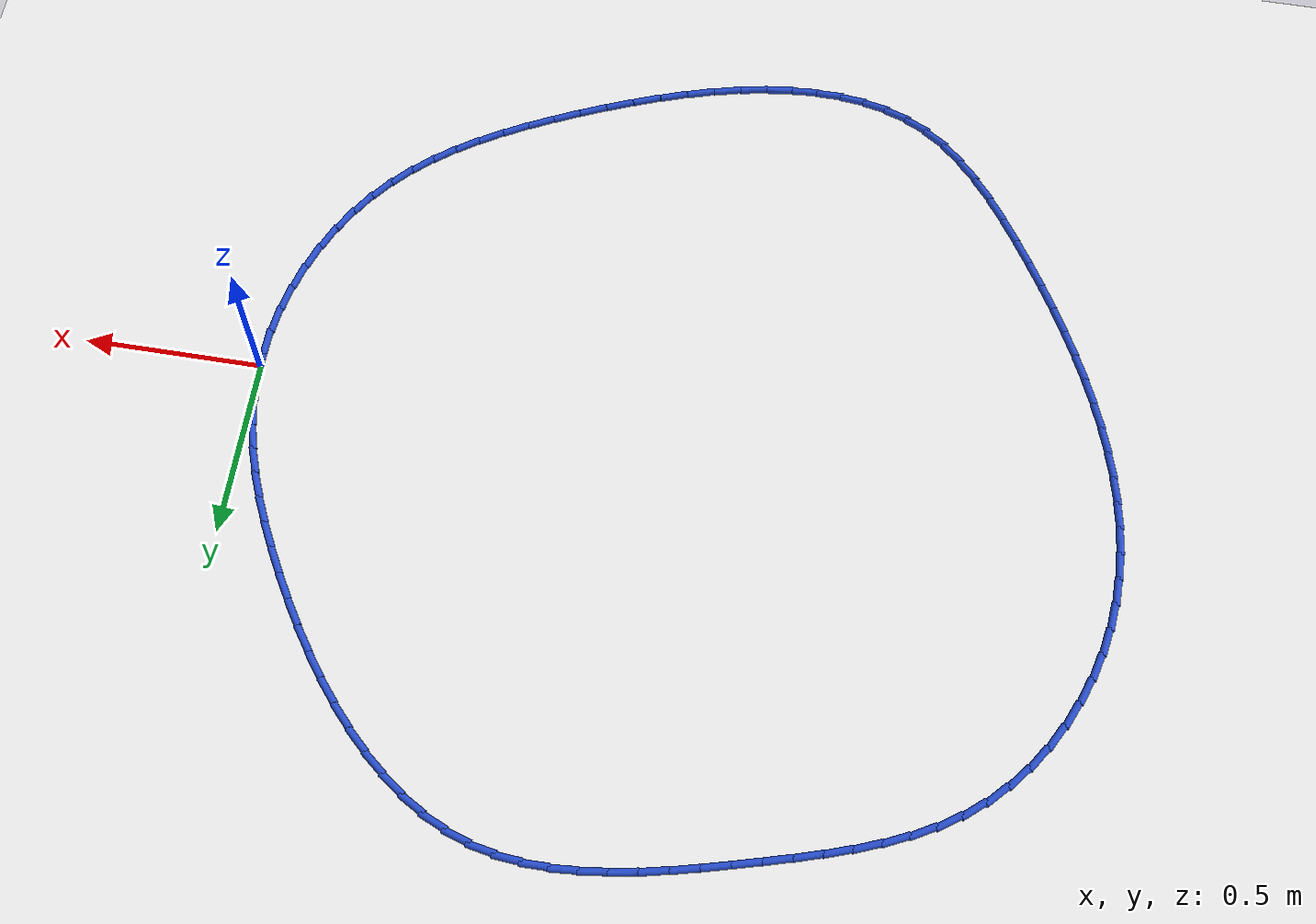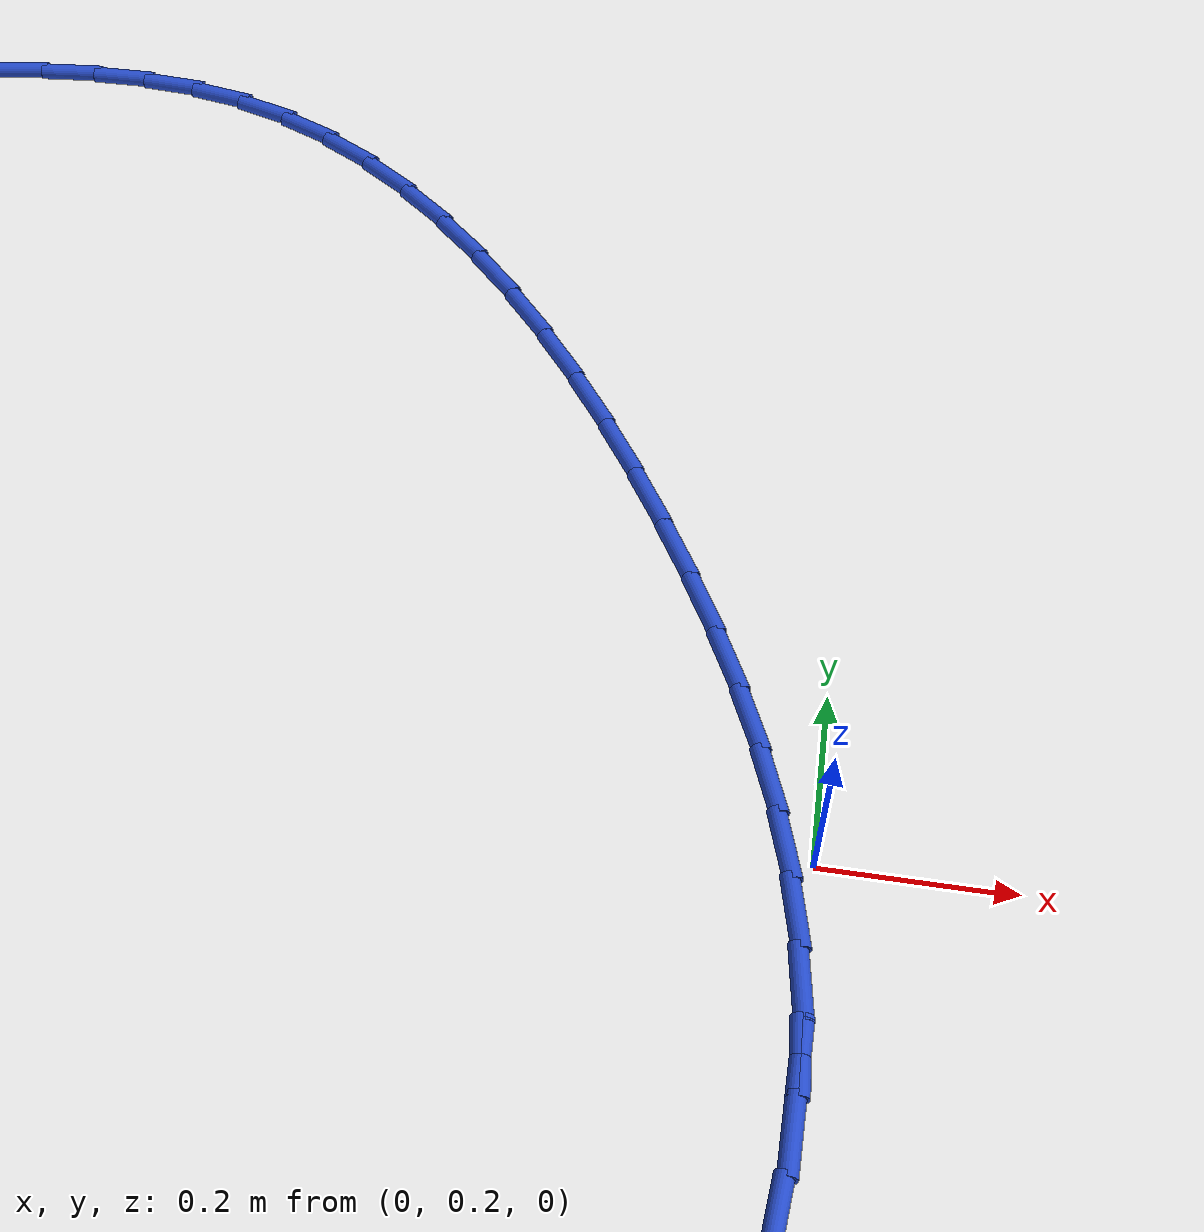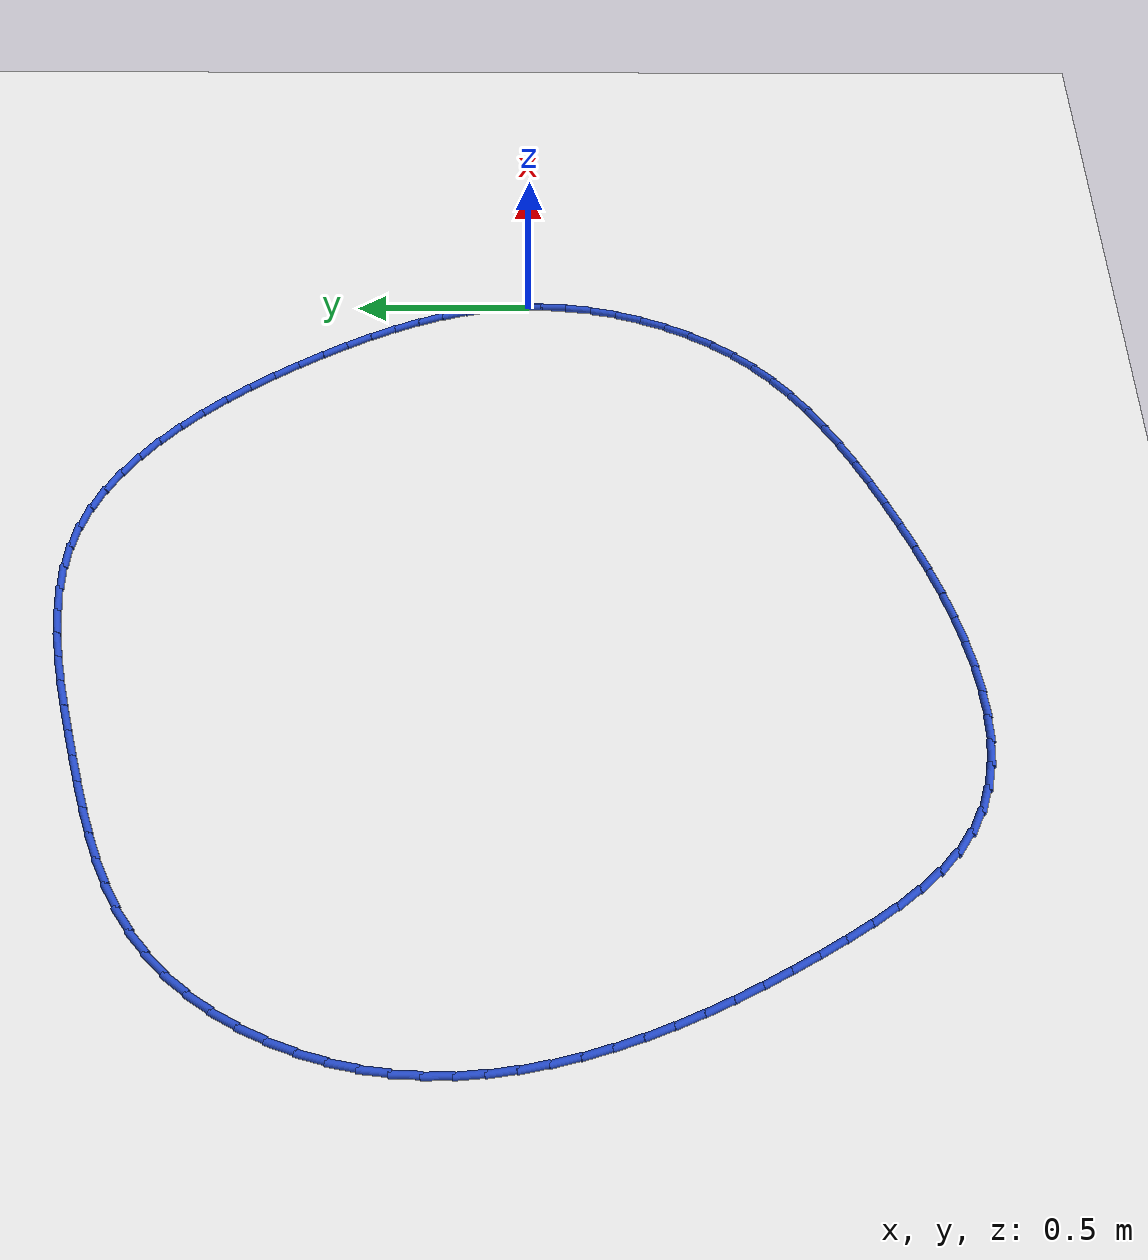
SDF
<sdf version="1.6">
 <world name="default">
  <light name="sun" type="directional">
   <pose>0 0 10 0 -0 0</pose>
   <diffuse>0.8 0.8 0.8 1</diffuse>
   <specular>0.2 0.2 0.2 1</specular>
   <attenuation>
    <range>1000</range>
    <constant>0.9</constant>
    <linear>0.01</linear>
    <quadratic>0.001</quadratic>
   </attenuation>
   <direction>-0.5 0.1 -0.9</direction>
  </light>
  <model name="ground_plane">
   <static>1</static>
   <link name="link">
    <collision name="collision">
     <geometry><plane><normal>0 0 1</normal><size>100 100</size></plane></geometry>
     <surface><friction><ode><mu>100</mu><mu2>50</mu2></ode></friction></surface>
    </collision>
    <visual name="visual">
     <cast_shadows>0</cast_shadows>
     <geometry><plane><normal>0 0 1</normal><size>100 100</size></plane></geometry>
     <material>
      <script><uri>file://media/materials/scripts/gazebo.material</uri><name>Gazebo/WhiteGlow</name></script>
     </material>
    </visual>
   </link>
  </model>
  <gravity>0 0 -9.8</gravity>
  <magnetic_field>6e-06 2.3e-05 -4.2e-05</magnetic_field>
  <atmosphere type="adiabatic"/>
  <physics name="default_physics" default="0" type="ode">
   <max_step_size>0.001</max_step_size>
   <real_time_factor>1</real_time_factor>
   <real_time_update_rate>1000</real_time_update_rate>
  </physics>
  <scene><ambient>0.4 0.4 0.4 1</ambient><background>0.7 0.7 0.7 1</background><shadows>1</shadows></scene>
  <spherical_coordinates>
   <surface_model>EARTH_WGS84</surface_model>
   <latitude_deg>0</latitude_deg>
   <longitude_deg>0</longitude_deg>
   <elevation>0</elevation>
   <heading_deg>0</heading_deg>
  </spherical_coordinates>
  <model name="line">
   <link name="link_0">
    <pose>1.2836953722228372e-16 5.551115123125783e-17 0.01 0 1.57 -1.5087732817986004</pose>
    <collision name="collision">
     <geometry><cylinder><radius>0.01</radius><length>0.08</length></cylinder></geometry>
    </collision>
    <visual name="visual">
     <material>
      <script><name>Gazebo/Blue</name><uri>file://media/materials/scripts/gazebo.material</uri></script>
     </material>
     <geometry><cylinder><radius>0.01</radius><length>0.08</length></cylinder></geometry>
    </visual>
   </link>
   <link name="link_1">
    <pose>-0.004509438530496902 0.0726126016100156 0.01 0 1.57 -1.426207285576159</pose>
    <collision name="collision">
     <geometry><cylinder><radius>0.01</radius><length>0.08</length></cylinder></geometry>
    </collision>
    <visual name="visual">
     <material>
      <script><name>Gazebo/Blue</name><uri>file://media/materials/scripts/gazebo.material</uri></script>
     </material>
     <geometry><cylinder><radius>0.01</radius><length>0.08</length></cylinder></geometry>
    </visual>
   </link>
   <link name="link_2">
    <pose>-0.014927756773249557 0.14416446343138437 0.01 0 1.57 -1.3500248979362055</pose>
    <collision name="collision">
     <geometry><cylinder><radius>0.01</radius><length>0.08</length></cylinder></geometry>
    </collision>
    <visual name="visual">
     <material>
      <script><name>Gazebo/Blue</name><uri>file://media/materials/scripts/gazebo.material</uri></script>
     </material>
     <geometry><cylinder><radius>0.01</radius><length>0.08</length></cylinder></geometry>
    </visual>
   </link>
   <link name="link_3">
    <pose>-0.030778236545627474 0.21479009466358934 0.01 0 1.57 -1.2812356658469162</pose>
    <collision name="collision">
     <geometry><cylinder><radius>0.01</radius><length>0.08</length></cylinder></geometry>
    </collision>
    <visual name="visual">
     <material>
      <script><name>Gazebo/Blue</name><uri>file://media/materials/scripts/gazebo.material</uri></script>
     </material>
     <geometry><cylinder><radius>0.01</radius><length>0.08</length></cylinder></geometry>
    </visual>
   </link>
   <link name="link_4">
    <pose>-0.051584159665000295 0.2846240045061137 0.01 0 1.57 -1.2203731152144184</pose>
    <collision name="collision">
     <geometry><cylinder><radius>0.01</radius><length>0.08</length></cylinder></geometry>
    </collision>
    <visual name="visual">
     <material>
      <script><name>Gazebo/Blue</name><uri>file://media/materials/scripts/gazebo.material</uri></script>
     </material>
     <geometry><cylinder><radius>0.01</radius><length>0.08</length></cylinder></geometry>
    </visual>
   </link>
   <link name="link_5">
    <pose>-0.0768688079487376 0.35380070215844034 0.01 0 1.57 -1.1675852802689446</pose>
    <collision name="collision">
     <geometry><cylinder><radius>0.01</radius><length>0.08</length></cylinder></geometry>
    </collision>
    <visual name="visual">
     <material>
      <script><name>Gazebo/Blue</name><uri>file://media/materials/scripts/gazebo.material</uri></script>
     </material>
     <geometry><cylinder><radius>0.01</radius><length>0.08</length></cylinder></geometry>
    </visual>
   </link>
   <link name="link_6">
    <pose>-0.10615546321420903 0.42245469682005243 0.01 0 1.57 -1.1227483582947433</pose>
    <collision name="collision">
     <geometry><cylinder><radius>0.01</radius><length>0.08</length></cylinder></geometry>
    </collision>
    <visual name="visual">
     <material>
      <script><name>Gazebo/Blue</name><uri>file://media/materials/scripts/gazebo.material</uri></script>
     </material>
     <geometry><cylinder><radius>0.01</radius><length>0.08</length></cylinder></geometry>
    </visual>
   </link>
   <link name="link_7">
    <pose>-0.1389674072787843 0.4907204976904329 0.01 0 1.57 -1.0855741588353058</pose>
    <collision name="collision">
     <geometry><cylinder><radius>0.01</radius><length>0.08</length></cylinder></geometry>
    </collision>
    <visual name="visual">
     <material>
      <script><name>Gazebo/Blue</name><uri>file://media/materials/scripts/gazebo.material</uri></script>
     </material>
     <geometry><cylinder><radius>0.01</radius><length>0.08</length></cylinder></geometry>
    </visual>
   </link>
   <link name="link_8">
    <pose>-0.17482792195983285 0.5587326139690648 0.01 0 1.57 -1.055380187900207</pose>
    <collision name="collision">
     <geometry><cylinder><radius>0.01</radius><length>0.08</length></cylinder></geometry>
    </collision>
    <visual name="visual">
     <material>
      <script><name>Gazebo/Blue</name><uri>file://media/materials/scripts/gazebo.material</uri></script>
     </material>
     <geometry><cylinder><radius>0.01</radius><length>0.08</length></cylinder></geometry>
    </visual>
   </link>
   <link name="link_9">
    <pose>-0.21327485133335095 0.626601158186111 0.01 0 1.57 -1.026470141316692</pose>
    <collision name="collision">
     <geometry><cylinder><radius>0.01</radius><length>0.08</length></cylinder></geometry>
    </collision>
    <visual name="visual">
     <material>
      <script><name>Gazebo/Blue</name><uri>file://media/materials/scripts/gazebo.material</uri></script>
     </material>
     <geometry><cylinder><radius>0.01</radius><length>0.08</length></cylinder></geometry>
    </visual>
   </link>
   <link name="link_10">
    <pose>-0.25408988020858475 0.6940277278268844 0.01 0 1.57 -0.9939908520646227</pose>
    <collision name="collision">
     <geometry><cylinder><radius>0.01</radius><length>0.08</length></cylinder></geometry>
    </collision>
    <visual name="visual">
     <material>
      <script><name>Gazebo/Blue</name><uri>file://media/materials/scripts/gazebo.material</uri></script>
     </material>
     <geometry><cylinder><radius>0.01</radius><length>0.08</length></cylinder></geometry>
    </visual>
   </link>
   <link name="link_11">
    <pose>-0.29725662594888785 0.7603756155934973 0.01 0 1.57 -0.95724530621543</pose>
    <collision name="collision">
     <geometry><cylinder><radius>0.01</radius><length>0.08</length></cylinder></geometry>
    </collision>
    <visual name="visual">
     <material>
      <script><name>Gazebo/Blue</name><uri>file://media/materials/scripts/gazebo.material</uri></script>
     </material>
     <geometry><cylinder><radius>0.01</radius><length>0.08</length></cylinder></geometry>
    </visual>
   </link>
   <link name="link_12">
    <pose>-0.3427647929895628 0.8249979163001325 0.01 0 1.57 -0.9155567894256261</pose>
    <collision name="collision">
     <geometry><cylinder><radius>0.01</radius><length>0.08</length></cylinder></geometry>
    </collision>
    <visual name="visual">
     <material>
      <script><name>Gazebo/Blue</name><uri>file://media/materials/scripts/gazebo.material</uri></script>
     </material>
     <geometry><cylinder><radius>0.01</radius><length>0.08</length></cylinder></geometry>
    </visual>
   </link>
   <link name="link_13">
    <pose>-0.3906040857659124 0.887247724760973 0.01 0 1.57 -0.8681254938740552</pose>
    <collision name="collision">
     <geometry><cylinder><radius>0.01</radius><length>0.08</length></cylinder></geometry>
    </collision>
    <visual name="visual">
     <material>
      <script><name>Gazebo/Blue</name><uri>file://media/materials/scripts/gazebo.material</uri></script>
     </material>
     <geometry><cylinder><radius>0.01</radius><length>0.08</length></cylinder></geometry>
    </visual>
   </link>
   <link name="link_14">
    <pose>-0.44076420871323896 0.9464781357902013 0.01 0 1.57 -0.8140241877058859</pose>
    <collision name="collision">
     <geometry><cylinder><radius>0.01</radius><length>0.08</length></cylinder></geometry>
    </collision>
    <visual name="visual">
     <material>
      <script><name>Gazebo/Blue</name><uri>file://media/materials/scripts/gazebo.material</uri></script>
     </material>
     <geometry><cylinder><radius>0.01</radius><length>0.08</length></cylinder></geometry>
    </visual>
   </link>
   <link name="link_15">
    <pose>-0.4932348662668451 1.002042244202001 0.01 0 1.57 -0.7522096720914596</pose>
    <collision name="collision">
     <geometry><cylinder><radius>0.01</radius><length>0.08</length></cylinder></geometry>
    </collision>
    <visual name="visual">
     <material>
      <script><name>Gazebo/Blue</name><uri>file://media/materials/scripts/gazebo.material</uri></script>
     </material>
     <geometry><cylinder><radius>0.01</radius><length>0.08</length></cylinder></geometry>
    </visual>
   </link>
   <link name="link_16">
    <pose>-0.5480057628620335 1.0532931448105542 0.01 0 1.57 -0.6815650671406721</pose>
    <collision name="collision">
     <geometry><cylinder><radius>0.01</radius><length>0.08</length></cylinder></geometry>
    </collision>
    <visual name="visual">
     <material>
      <script><name>Gazebo/Blue</name><uri>file://media/materials/scripts/gazebo.material</uri></script>
     </material>
     <geometry><cylinder><radius>0.01</radius><length>0.08</length></cylinder></geometry>
    </visual>
   </link>
   <link name="link_17">
    <pose>-0.605066602934107 1.099583932430045 0.01 0 1.57 -0.6009952234339169</pose>
    <collision name="collision">
     <geometry><cylinder><radius>0.01</radius><length>0.08</length></cylinder></geometry>
    </collision>
    <visual name="visual">
     <material>
      <script><name>Gazebo/Blue</name><uri>file://media/materials/scripts/gazebo.material</uri></script>
     </material>
     <geometry><cylinder><radius>0.01</radius><length>0.08</length></cylinder></geometry>
    </visual>
   </link>
   <link name="link_18">
    <pose>-0.6644070909183676 1.1402677018746545 0.01 0 1.57 -0.5096023781390281</pose>
    <collision name="collision">
     <geometry><cylinder><radius>0.01</radius><length>0.08</length></cylinder></geometry>
    </collision>
    <visual name="visual">
     <material>
      <script><name>Gazebo/Blue</name><uri>file://media/materials/scripts/gazebo.material</uri></script>
     </material>
     <geometry><cylinder><radius>0.01</radius><length>0.08</length></cylinder></geometry>
    </visual>
   </link>
   <link name="link_19">
    <pose>-0.7260169312501185 1.1746975479585675 0.01 0 1.57 -0.40696181334722586</pose>
    <collision name="collision">
     <geometry><cylinder><radius>0.01</radius><length>0.08</length></cylinder></geometry>
    </collision>
    <visual name="visual">
     <material>
      <script><name>Gazebo/Blue</name><uri>file://media/materials/scripts/gazebo.material</uri></script>
     </material>
     <geometry><cylinder><radius>0.01</radius><length>0.08</length></cylinder></geometry>
    </visual>
   </link>
   <link name="link_20">
    <pose>-0.7898858283646618 1.2022265654959658 0.01 0 1.57 -0.2935165343666674</pose>
    <collision name="collision">
     <geometry><cylinder><radius>0.01</radius><length>0.08</length></cylinder></geometry>
    </collision>
    <visual name="visual">
     <material>
      <script><name>Gazebo/Blue</name><uri>file://media/materials/scripts/gazebo.material</uri></script>
     </material>
     <geometry><cylinder><radius>0.01</radius><length>0.08</length></cylinder></geometry>
    </visual>
   </link>
   <link name="link_21">
    <pose>-0.8560030163935188 1.2222102546847171 0.01 0 1.57 -0.17720008021597408</pose>
    <collision name="collision">
     <geometry><cylinder><radius>0.01</radius><length>0.08</length></cylinder></geometry>
    </collision>
    <visual name="visual">
     <material>
      <script><name>Gazebo/Blue</name><uri>file://media/materials/scripts/gazebo.material</uri></script>
     </material>
     <geometry><cylinder><radius>0.01</radius><length>0.08</length></cylinder></geometry>
    </visual>
   </link>
   <link name="link_22">
    <pose>-0.9242732901265706 1.2344359834276604 0.01 0 1.57 -0.07375264710220254</pose>
    <collision name="collision">
     <geometry><cylinder><radius>0.01</radius><length>0.08</length></cylinder></geometry>
    </collision>
    <visual name="visual">
     <material>
      <script><name>Gazebo/Blue</name><uri>file://media/materials/scripts/gazebo.material</uri></script>
     </material>
     <geometry><cylinder><radius>0.01</radius><length>0.08</length></cylinder></geometry>
    </visual>
   </link>
   <link name="link_23">
    <pose>-0.9944200448676088 1.239618893082733 0.01 0 1.57 0.014284498265305886</pose>
    <collision name="collision">
     <geometry><cylinder><radius>0.01</radius><length>0.08</length></cylinder></geometry>
    </collision>
    <visual name="visual">
     <material>
      <script><name>Gazebo/Blue</name><uri>file://media/materials/scripts/gazebo.material</uri></script>
     </material>
     <geometry><cylinder><radius>0.01</radius><length>0.08</length></cylinder></geometry>
    </visual>
   </link>
   <link name="link_24">
    <pose>-1.0661431802447585 1.238594294390182 0.01 0 1.57 0.08740478664623522</pose>
    <collision name="collision">
     <geometry><cylinder><radius>0.01</radius><length>0.08</length></cylinder></geometry>
    </collision>
    <visual name="visual">
     <material>
      <script><name>Gazebo/Blue</name><uri>file://media/materials/scripts/gazebo.material</uri></script>
     </material>
     <geometry><cylinder><radius>0.01</radius><length>0.08</length></cylinder></geometry>
    </visual>
   </link>
   <link name="link_25">
    <pose>-1.139142595886144 1.2321974980902541 0.01 0 1.57 0.14673885962168273</pose>
    <collision name="collision">
     <geometry><cylinder><radius>0.01</radius><length>0.08</length></cylinder></geometry>
    </collision>
    <visual name="visual">
     <material>
      <script><name>Gazebo/Blue</name><uri>file://media/materials/scripts/gazebo.material</uri></script>
     </material>
     <geometry><cylinder><radius>0.01</radius><length>0.08</length></cylinder></geometry>
    </visual>
   </link>
   <link name="link_26">
    <pose>-1.2131181914198896 1.2212638149231947 0.01 0 1.57 0.19359201336629675</pose>
    <collision name="collision">
     <geometry><cylinder><radius>0.01</radius><length>0.08</length></cylinder></geometry>
    </collision>
    <visual name="visual">
     <material>
      <script><name>Gazebo/Blue</name><uri>file://media/materials/scripts/gazebo.material</uri></script>
     </material>
     <geometry><cylinder><radius>0.01</radius><length>0.08</length></cylinder></geometry>
    </visual>
   </link>
   <link name="link_27">
    <pose>-1.2877698664741197 1.206628555629251 0.01 0 1.57 0.22916964174539992</pose>
    <collision name="collision">
     <geometry><cylinder><radius>0.01</radius><length>0.08</length></cylinder></geometry>
    </collision>
    <visual name="visual">
     <material>
      <script><name>Gazebo/Blue</name><uri>file://media/materials/scripts/gazebo.material</uri></script>
     </material>
     <geometry><cylinder><radius>0.01</radius><length>0.08</length></cylinder></geometry>
    </visual>
   </link>
   <link name="link_28">
    <pose>-1.3627975206769587 1.1891270309486688 0.01 0 1.57 0.25443741020114097</pose>
    <collision name="collision">
     <geometry><cylinder><radius>0.01</radius><length>0.08</length></cylinder></geometry>
    </collision>
    <visual name="visual">
     <material>
      <script><name>Gazebo/Blue</name><uri>file://media/materials/scripts/gazebo.material</uri></script>
     </material>
     <geometry><cylinder><radius>0.01</radius><length>0.08</length></cylinder></geometry>
    </visual>
   </link>
   <link name="link_29">
    <pose>-1.4379010536565309 1.1695945516216943 0.01 0 1.57 0.2700578619559478</pose>
    <collision name="collision">
     <geometry><cylinder><radius>0.01</radius><length>0.08</length></cylinder></geometry>
    </collision>
    <visual name="visual">
     <material>
      <script><name>Gazebo/Blue</name><uri>file://media/materials/scripts/gazebo.material</uri></script>
     </material>
     <geometry><cylinder><radius>0.01</radius><length>0.08</length></cylinder></geometry>
    </visual>
   </link>
   <link name="link_30">
    <pose>-1.5127803650409613 1.1488664283885743 0.01 0 1.57 0.27745694697354323</pose>
    <collision name="collision">
     <geometry><cylinder><radius>0.01</radius><length>0.08</length></cylinder></geometry>
    </collision>
    <visual name="visual">
     <material>
      <script><name>Gazebo/Blue</name><uri>file://media/materials/scripts/gazebo.material</uri></script>
     </material>
     <geometry><cylinder><radius>0.01</radius><length>0.08</length></cylinder></geometry>
    </visual>
   </link>
   <link name="link_31">
    <pose>-1.58712795095123 1.127692012873905 0.01 0 1.57 0.28853047373898216</pose>
    <collision name="collision">
     <geometry><cylinder><radius>0.01</radius><length>0.08</length></cylinder></geometry>
    </collision>
    <visual name="visual">
     <material>
      <script><name>Gazebo/Blue</name><uri>file://media/materials/scripts/gazebo.material</uri></script>
     </material>
     <geometry><cylinder><radius>0.01</radius><length>0.08</length></cylinder></geometry>
    </visual>
   </link>
   <link name="link_32">
    <pose>-1.6605567866741784 1.105897372582165 0.01 0 1.57 0.3107894128680913</pose>
    <collision name="collision">
     <geometry><cylinder><radius>0.01</radius><length>0.08</length></cylinder></geometry>
    </collision>
    <visual name="visual">
     <material>
      <script><name>Gazebo/Blue</name><uri>file://media/materials/scripts/gazebo.material</uri></script>
     </material>
     <geometry><cylinder><radius>0.01</radius><length>0.08</length></cylinder></geometry>
    </visual>
   </link>
   <link name="link_33">
    <pose>-1.7326314896812318 1.0827471120560994 0.01 0 1.57 0.3448852000510743</pose>
    <collision name="collision">
     <geometry><cylinder><radius>0.01</radius><length>0.08</length></cylinder></geometry>
    </collision>
    <visual name="visual">
     <material>
      <script><name>Gazebo/Blue</name><uri>file://media/materials/scripts/gazebo.material</uri></script>
     </material>
     <geometry><cylinder><radius>0.01</radius><length>0.08</length></cylinder></geometry>
    </visual>
   </link>
   <link name="link_34">
    <pose>-1.802915994066111 1.0574979014173806 0.01 0 1.57 0.39145488321131927</pose>
    <collision name="collision">
     <geometry><cylinder><radius>0.01</radius><length>0.08</length></cylinder></geometry>
    </collision>
    <visual name="visual">
     <material>
      <script><name>Gazebo/Blue</name><uri>file://media/materials/scripts/gazebo.material</uri></script>
     </material>
     <geometry><cylinder><radius>0.01</radius><length>0.08</length></cylinder></geometry>
    </visual>
   </link>
   <link name="link_35">
    <pose>-1.8709742339225381 1.0294064107876815 0.01 0 1.57 0.4510815073476906</pose>
    <collision name="collision">
     <geometry><cylinder><radius>0.01</radius><length>0.08</length></cylinder></geometry>
    </collision>
    <visual name="visual">
     <material>
      <script><name>Gazebo/Blue</name><uri>file://media/materials/scripts/gazebo.material</uri></script>
     </material>
     <geometry><cylinder><radius>0.01</radius><length>0.08</length></cylinder></geometry>
    </visual>
   </link>
   <link name="link_36">
    <pose>-1.9363701433442337 0.9977293102886752 0.01 0 1.57 0.5240628065760388</pose>
    <collision name="collision">
     <geometry><cylinder><radius>0.01</radius><length>0.08</length></cylinder></geometry>
    </collision>
    <visual name="visual">
     <material>
      <script><name>Gazebo/Blue</name><uri>file://media/materials/scripts/gazebo.material</uri></script>
     </material>
     <geometry><cylinder><radius>0.01</radius><length>0.08</length></cylinder></geometry>
    </visual>
   </link>
   <link name="link_37">
    <pose>-1.99866765642492 0.9617232700420343 0.01 0 1.57 0.6100880866090069</pose>
    <collision name="collision">
     <geometry><cylinder><radius>0.01</radius><length>0.08</length></cylinder></geometry>
    </collision>
    <visual name="visual">
     <material>
      <script><name>Gazebo/Blue</name><uri>file://media/materials/scripts/gazebo.material</uri></script>
     </material>
     <geometry><cylinder><radius>0.01</radius><length>0.08</length></cylinder></geometry>
    </visual>
   </link>
   <link name="link_38">
    <pose>-2.0574307072583182 0.9206449601694318 0.01 0 1.57 0.7077708614016169</pose>
    <collision name="collision">
     <geometry><cylinder><radius>0.01</radius><length>0.08</length></cylinder></geometry>
    </collision>
    <visual name="visual">
     <material>
      <script><name>Gazebo/Blue</name><uri>file://media/materials/scripts/gazebo.material</uri></script>
     </material>
     <geometry><cylinder><radius>0.01</radius><length>0.08</length></cylinder></geometry>
    </visual>
   </link>
   <link name="link_39">
    <pose>-2.112224414549373 0.8737601728503915 0.01 0 1.57 0.8084944957201675</pose>
    <collision name="collision">
     <geometry><cylinder><radius>0.01</radius><length>0.08</length></cylinder></geometry>
    </collision>
    <visual name="visual">
     <material>
      <script><name>Gazebo/Blue</name><uri>file://media/materials/scripts/gazebo.material</uri></script>
     </material>
     <geometry><cylinder><radius>0.01</radius><length>0.08</length></cylinder></geometry>
    </visual>
   </link>
   <link name="link_40">
    <pose>-2.1626885334104715 0.8209094353446094 0.01 0 1.57 0.9019982304138224</pose>
    <collision name="collision">
     <geometry><cylinder><radius>0.01</radius><length>0.08</length></cylinder></geometry>
    </collision>
    <visual name="visual">
     <material>
      <script><name>Gazebo/Blue</name><uri>file://media/materials/scripts/gazebo.material</uri></script>
     </material>
     <geometry><cylinder><radius>0.01</radius><length>0.08</length></cylinder></geometry>
    </visual>
   </link>
   <link name="link_41">
    <pose>-2.208580600026069 0.7628402439932127 0.01 0 1.57 0.9889394240686626</pose>
    <collision name="collision">
     <geometry><cylinder><radius>0.01</radius><length>0.08</length></cylinder></geometry>
    </collision>
    <visual name="visual">
     <material>
      <script><name>Gazebo/Blue</name><uri>file://media/materials/scripts/gazebo.material</uri></script>
     </material>
     <geometry><cylinder><radius>0.01</radius><length>0.08</length></cylinder></geometry>
    </visual>
   </link>
   <link name="link_42">
    <pose>-2.2496685311186693 0.7003800301123867 0.01 0 1.57 1.0709976454118504</pose>
    <collision name="collision">
     <geometry><cylinder><radius>0.01</radius><length>0.08</length></cylinder></geometry>
    </collision>
    <visual name="visual">
     <material>
      <script><name>Gazebo/Blue</name><uri>file://media/materials/scripts/gazebo.material</uri></script>
     </material>
     <geometry><cylinder><radius>0.01</radius><length>0.08</length></cylinder></geometry>
    </visual>
   </link>
   <link name="link_43">
    <pose>-2.2857202434107773 0.6343562250183157 0.01 0 1.57 1.1498618903025162</pose>
    <collision name="collision">
     <geometry><cylinder><radius>0.01</radius><length>0.08</length></cylinder></geometry>
    </collision>
    <visual name="visual">
     <material>
      <script><name>Gazebo/Blue</name><uri>file://media/materials/scripts/gazebo.material</uri></script>
     </material>
     <geometry><cylinder><radius>0.01</radius><length>0.08</length></cylinder></geometry>
    </visual>
   </link>
   <link name="link_44">
    <pose>-2.316503653624895 0.5655962600271845 0.01 0 1.57 1.2272177234000663</pose>
    <collision name="collision">
     <geometry><cylinder><radius>0.01</radius><length>0.08</length></cylinder></geometry>
    </collision>
    <visual name="visual">
     <material>
      <script><name>Gazebo/Blue</name><uri>file://media/materials/scripts/gazebo.material</uri></script>
     </material>
     <geometry><cylinder><radius>0.01</radius><length>0.08</length></cylinder></geometry>
    </visual>
   </link>
   <link name="link_45">
    <pose>-2.341786678483529 0.4949275664551784 0.01 0 1.57 1.3047729056261252</pose>
    <collision name="collision">
     <geometry><cylinder><radius>0.01</radius><length>0.08</length></cylinder></geometry>
    </collision>
    <visual name="visual">
     <material>
      <script><name>Gazebo/Blue</name><uri>file://media/materials/scripts/gazebo.material</uri></script>
     </material>
     <geometry><cylinder><radius>0.01</radius><length>0.08</length></cylinder></geometry>
    </visual>
   </link>
   <link name="link_46">
    <pose>-2.3613372347091817 0.42317757561848224 0.01 0 1.57 1.383503804231524</pose>
    <collision name="collision">
     <geometry><cylinder><radius>0.01</radius><length>0.08</length></cylinder></geometry>
    </collision>
    <visual name="visual">
     <material>
      <script><name>Gazebo/Blue</name><uri>file://media/materials/scripts/gazebo.material</uri></script>
     </material>
     <geometry><cylinder><radius>0.01</radius><length>0.08</length></cylinder></geometry>
    </visual>
   </link>
   <link name="link_47">
    <pose>-2.3750051280123254 0.3510566933970384 0.01 0 1.57 1.4607355077380484</pose>
    <collision name="collision">
     <geometry><cylinder><radius>0.01</radius><length>0.08</length></cylinder></geometry>
    </collision>
    <visual name="visual">
     <material>
      <script><name>Gazebo/Blue</name><uri>file://media/materials/scripts/gazebo.material</uri></script>
     </material>
     <geometry><cylinder><radius>0.01</radius><length>0.08</length></cylinder></geometry>
    </visual>
   </link>
   <link name="link_48">
    <pose>-2.3829932616271883 0.27877072312558054 0.01 0 1.57 1.5348021699721812</pose>
    <collision name="collision">
     <geometry><cylinder><radius>0.01</radius><length>0.08</length></cylinder></geometry>
    </collision>
    <visual name="visual">
     <material>
      <script><name>Gazebo/Blue</name><uri>file://media/materials/scripts/gazebo.material</uri></script>
     </material>
     <geometry><cylinder><radius>0.01</radius><length>0.08</length></cylinder></geometry>
    </visual>
   </link>
   <link name="link_49">
    <pose>-2.3855996887260185 0.20638949182161467 0.01 0 1.57 -1.5365970037750118</pose>
    <collision name="collision">
     <geometry><cylinder><radius>0.01</radius><length>0.08</length></cylinder></geometry>
    </collision>
    <visual name="visual">
     <material>
      <script><name>Gazebo/Blue</name><uri>file://media/materials/scripts/gazebo.material</uri></script>
     </material>
     <geometry><cylinder><radius>0.01</radius><length>0.08</length></cylinder></geometry>
    </visual>
   </link>
   <link name="link_50">
    <pose>-2.3831224638648463 0.13398282452512378 0.01 0 1.57 -1.4707638083458086</pose>
    <collision name="collision">
     <geometry><cylinder><radius>0.01</radius><length>0.08</length></cylinder></geometry>
    </collision>
    <visual name="visual">
     <material>
      <script><name>Gazebo/Blue</name><uri>file://media/materials/scripts/gazebo.material</uri></script>
     </material>
     <geometry><cylinder><radius>0.01</radius><length>0.08</length></cylinder></geometry>
    </visual>
   </link>
   <link name="link_51">
    <pose>-2.3758596415996984 0.0616205462760908 0.01 0 1.57 -1.4095688366863721</pose>
    <collision name="collision">
     <geometry><cylinder><radius>0.01</radius><length>0.08</length></cylinder></geometry>
    </collision>
    <visual name="visual">
     <material>
      <script><name>Gazebo/Blue</name><uri>file://media/materials/scripts/gazebo.material</uri></script>
     </material>
     <geometry><cylinder><radius>0.01</radius><length>0.08</length></cylinder></geometry>
    </visual>
   </link>
   <link name="link_52">
    <pose>-2.364109276486605 -0.01062751788550146 0.01 0 1.57 -1.3531110878382264</pose>
    <collision name="collision">
     <geometry><cylinder><radius>0.01</radius><length>0.08</length></cylinder></geometry>
    </collision>
    <visual name="visual">
     <material>
      <script><name>Gazebo/Blue</name><uri>file://media/materials/scripts/gazebo.material</uri></script>
     </material>
     <geometry><cylinder><radius>0.01</radius><length>0.08</length></cylinder></geometry>
    </visual>
   </link>
   <link name="link_53">
    <pose>-2.3481694230815937 -0.08269154291967024 0.01 0 1.57 -1.30134949458839</pose>
    <collision name="collision">
     <geometry><cylinder><radius>0.01</radius><length>0.08</length></cylinder></geometry>
    </collision>
    <visual name="visual">
     <material>
      <script><name>Gazebo/Blue</name><uri>file://media/materials/scripts/gazebo.material</uri></script>
     </material>
     <geometry><cylinder><radius>0.01</radius><length>0.08</length></cylinder></geometry>
    </visual>
   </link>
   <link name="link_54">
    <pose>-2.3283381359406943 -0.15450170378643266 0.01 0 1.57 -1.2541426338244295</pose>
    <collision name="collision">
     <geometry><cylinder><radius>0.01</radius><length>0.08</length></cylinder></geometry>
    </collision>
    <visual name="visual">
     <material>
      <script><name>Gazebo/Blue</name><uri>file://media/materials/scripts/gazebo.material</uri></script>
     </material>
     <geometry><cylinder><radius>0.01</radius><length>0.08</length></cylinder></geometry>
    </visual>
   </link>
   <link name="link_55">
    <pose>-2.304913469619935 -0.22598817544580602 0.01 0 1.57 -1.2112843211259992</pose>
    <collision name="collision">
     <geometry><cylinder><radius>0.01</radius><length>0.08</length></cylinder></geometry>
    </collision>
    <visual name="visual">
     <material>
      <script><name>Gazebo/Blue</name><uri>file://media/materials/scripts/gazebo.material</uri></script>
     </material>
     <geometry><cylinder><radius>0.01</radius><length>0.08</length></cylinder></geometry>
    </visual>
   </link>
   <link name="link_56">
    <pose>-2.2781934786753437 -0.2970811328578074 0.01 0 1.57 -1.172532781892553</pose>
    <collision name="collision">
     <geometry><cylinder><radius>0.01</radius><length>0.08</length></cylinder></geometry>
    </collision>
    <visual name="visual">
     <material>
      <script><name>Gazebo/Blue</name><uri>file://media/materials/scripts/gazebo.material</uri></script>
     </material>
     <geometry><cylinder><radius>0.01</radius><length>0.08</length></cylinder></geometry>
    </visual>
   </link>
   <link name="link_57">
    <pose>-2.248476217662949 -0.3677107509824541 0.01 0 1.57 -1.1376329827983063</pose>
    <collision name="collision">
     <geometry><cylinder><radius>0.01</radius><length>0.08</length></cylinder></geometry>
    </collision>
    <visual name="visual">
     <material>
      <script><name>Gazebo/Blue</name><uri>file://media/materials/scripts/gazebo.material</uri></script>
     </material>
     <geometry><cylinder><radius>0.01</radius><length>0.08</length></cylinder></geometry>
    </visual>
   </link>
   <link name="link_58">
    <pose>-2.216059741138781 -0.4378072047797623 0.01 0 1.57 -1.10633279850408</pose>
    <collision name="collision">
     <geometry><cylinder><radius>0.01</radius><length>0.08</length></cylinder></geometry>
    </collision>
    <visual name="visual">
     <material>
      <script><name>Gazebo/Blue</name><uri>file://media/materials/scripts/gazebo.material</uri></script>
     </material>
     <geometry><cylinder><radius>0.01</radius><length>0.08</length></cylinder></geometry>
    </visual>
   </link>
   <link name="link_59">
    <pose>-2.181242103658868 -0.5073006692097511 0.01 0 1.57 -1.0783941628881755</pose>
    <collision name="collision">
     <geometry><cylinder><radius>0.01</radius><length>0.08</length></cylinder></geometry>
    </collision>
    <visual name="visual">
     <material>
      <script><name>Gazebo/Blue</name><uri>file://media/materials/scripts/gazebo.material</uri></script>
     </material>
     <geometry><cylinder><radius>0.01</radius><length>0.08</length></cylinder></geometry>
    </visual>
   </link>
   <link name="link_60">
    <pose>-2.144321359779237 -0.5761213192324368 0.01 0 1.57 -1.053600441586746</pose>
    <collision name="collision">
     <geometry><cylinder><radius>0.01</radius><length>0.08</length></cylinder></geometry>
    </collision>
    <visual name="visual">
     <material>
      <script><name>Gazebo/Blue</name><uri>file://media/materials/scripts/gazebo.material</uri></script>
     </material>
     <geometry><cylinder><radius>0.01</radius><length>0.08</length></cylinder></geometry>
    </visual>
   </link>
   <link name="link_61">
    <pose>-2.105595564055918 -0.6441993298078363 0.01 0 1.57 -1.0317611518226846</pose>
    <collision name="collision">
     <geometry><cylinder><radius>0.01</radius><length>0.08</length></cylinder></geometry>
    </collision>
    <visual name="visual">
     <material>
      <script><name>Gazebo/Blue</name><uri>file://media/materials/scripts/gazebo.material</uri></script>
     </material>
     <geometry><cylinder><radius>0.01</radius><length>0.08</length></cylinder></geometry>
    </visual>
   </link>
   <link name="link_62">
    <pose>-2.0653627710449403 -0.7114648758959672 0.01 0 1.57 -1.0118041466445074</pose>
    <collision name="collision">
     <geometry><cylinder><radius>0.01</radius><length>0.08</length></cylinder></geometry>
    </collision>
    <visual name="visual">
     <material>
      <script><name>Gazebo/Blue</name><uri>file://media/materials/scripts/gazebo.material</uri></script>
     </material>
     <geometry><cylinder><radius>0.01</radius><length>0.08</length></cylinder></geometry>
    </visual>
   </link>
   <link name="link_63">
    <pose>-2.023877820092217 -0.7777828130663781 0.01 0 1.57 -0.9836053130980161</pose>
    <collision name="collision">
     <geometry><cylinder><radius>0.01</radius><length>0.08</length></cylinder></geometry>
    </collision>
    <visual name="visual">
     <material>
      <script><name>Gazebo/Blue</name><uri>file://media/materials/scripts/gazebo.material</uri></script>
     </material>
     <geometry><cylinder><radius>0.01</radius><length>0.08</length></cylinder></geometry>
    </visual>
   </link>
   <link name="link_64">
    <pose>-1.9809312082442017 -0.8423161477968474 0.01 0 1.57 -0.9400455211857185</pose>
    <collision name="collision">
     <geometry><cylinder><radius>0.01</radius><length>0.08</length></cylinder></geometry>
    </collision>
    <visual name="visual">
     <material>
      <script><name>Gazebo/Blue</name><uri>file://media/materials/scripts/gazebo.material</uri></script>
     </material>
     <geometry><cylinder><radius>0.01</radius><length>0.08</length></cylinder></geometry>
    </visual>
   </link>
   <link name="link_65">
    <pose>-1.9360309808939893 -0.9038009635029886 0.01 0 1.57 -0.8790472035198508</pose>
    <collision name="collision">
     <geometry><cylinder><radius>0.01</radius><length>0.08</length></cylinder></geometry>
    </collision>
    <visual name="visual">
     <material>
      <script><name>Gazebo/Blue</name><uri>file://media/materials/scripts/gazebo.material</uri></script>
     </material>
     <geometry><cylinder><radius>0.01</radius><length>0.08</length></cylinder></geometry>
    </visual>
   </link>
   <link name="link_66">
    <pose>-1.8886811887251065 -0.9609673056338403 0.01 0 1.57 -0.7979877324000475</pose>
    <collision name="collision">
     <geometry><cylinder><radius>0.01</radius><length>0.08</length></cylinder></geometry>
    </collision>
    <visual name="visual">
     <material>
      <script><name>Gazebo/Blue</name><uri>file://media/materials/scripts/gazebo.material</uri></script>
     </material>
     <geometry><cylinder><radius>0.01</radius><length>0.08</length></cylinder></geometry>
    </visual>
   </link>
   <link name="link_67">
    <pose>-1.8383858824210775 -1.0125452196384412 0.01 0 1.57 -0.6940667588217848</pose>
    <collision name="collision">
     <geometry><cylinder><radius>0.01</radius><length>0.08</length></cylinder></geometry>
    </collision>
    <visual name="visual">
     <material>
      <script><name>Gazebo/Blue</name><uri>file://media/materials/scripts/gazebo.material</uri></script>
     </material>
     <geometry><cylinder><radius>0.01</radius><length>0.08</length></cylinder></geometry>
    </visual>
   </link>
   <link name="link_68">
    <pose>-1.784649112665428 -1.0572647509658302 0.01 0 1.57 -0.5657935463511379</pose>
    <collision name="collision">
     <geometry><cylinder><radius>0.01</radius><length>0.08</length></cylinder></geometry>
    </collision>
    <visual name="visual">
     <material>
      <script><name>Gazebo/Blue</name><uri>file://media/materials/scripts/gazebo.material</uri></script>
     </material>
     <geometry><cylinder><radius>0.01</radius><length>0.08</length></cylinder></geometry>
    </visual>
   </link>
   <link name="link_69">
    <pose>-1.7269884741419144 -1.0938821301720834 0.01 0 1.57 -0.42735076749979556</pose>
    <collision name="collision">
     <geometry><cylinder><radius>0.01</radius><length>0.08</length></cylinder></geometry>
    </collision>
    <visual name="visual">
     <material>
      <script><name>Gazebo/Blue</name><uri>file://media/materials/scripts/gazebo.material</uri></script>
     </material>
     <geometry><cylinder><radius>0.01</radius><length>0.08</length></cylinder></geometry>
    </visual>
   </link>
   <link name="link_70">
    <pose>-1.6653380796735078 -1.1219588574435575 0.01 0 1.57 -0.29803528855018774</pose>
    <collision name="collision">
     <geometry><cylinder><radius>0.01</radius><length>0.08</length></cylinder></geometry>
    </collision>
    <visual name="visual">
     <material>
      <script><name>Gazebo/Blue</name><uri>file://media/materials/scripts/gazebo.material</uri></script>
     </material>
     <geometry><cylinder><radius>0.01</radius><length>0.08</length></cylinder></geometry>
    </visual>
   </link>
   <link name="link_71">
    <pose>-1.60011689501734 -1.1419938167352182 0.01 0 1.57 -0.1815296906331543</pose>
    <collision name="collision">
     <geometry><cylinder><radius>0.01</radius><length>0.08</length></cylinder></geometry>
    </collision>
    <visual name="visual">
     <material>
      <script><name>Gazebo/Blue</name><uri>file://media/materials/scripts/gazebo.material</uri></script>
     </material>
     <geometry><cylinder><radius>0.01</radius><length>0.08</length></cylinder></geometry>
    </visual>
   </link>
   <link name="link_72">
    <pose>-1.5317711958401994 -1.1545386912412103 0.01 0 1.57 -0.0787744448174335</pose>
    <collision name="collision">
     <geometry><cylinder><radius>0.01</radius><length>0.08</length></cylinder></geometry>
    </collision>
    <visual name="visual">
     <material>
      <script><name>Gazebo/Blue</name><uri>file://media/materials/scripts/gazebo.material</uri></script>
     </material>
     <geometry><cylinder><radius>0.01</radius><length>0.08</length></cylinder></geometry>
    </visual>
   </link>
   <link name="link_73">
    <pose>-1.460747257808879 -1.1601451641556806 0.01 0 1.57 0.01065055466520904</pose>
    <collision name="collision">
     <geometry><cylinder><radius>0.01</radius><length>0.08</length></cylinder></geometry>
    </collision>
    <visual name="visual">
     <material>
      <script><name>Gazebo/Blue</name><uri>file://media/materials/scripts/gazebo.material</uri></script>
     </material>
     <geometry><cylinder><radius>0.01</radius><length>0.08</length></cylinder></geometry>
    </visual>
   </link>
   <link name="link_74">
    <pose>-1.3874913565901692 -1.1593649186727746 0.01 0 1.57 0.08792755938989345</pose>
    <collision name="collision">
     <geometry><cylinder><radius>0.01</radius><length>0.08</length></cylinder></geometry>
    </collision>
    <visual name="visual">
     <material>
      <script><name>Gazebo/Blue</name><uri>file://media/materials/scripts/gazebo.material</uri></script>
     </material>
     <geometry><cylinder><radius>0.01</radius><length>0.08</length></cylinder></geometry>
    </visual>
   </link>
   <link name="link_75">
    <pose>-1.3124497678508615 -1.152749637986638 0.01 0 1.57 0.15453791561225072</pose>
    <collision name="collision">
     <geometry><cylinder><radius>0.01</radius><length>0.08</length></cylinder></geometry>
    </collision>
    <visual name="visual">
     <material>
      <script><name>Gazebo/Blue</name><uri>file://media/materials/scripts/gazebo.material</uri></script>
     </material>
     <geometry><cylinder><radius>0.01</radius><length>0.08</length></cylinder></geometry>
    </visual>
   </link>
   <link name="link_76">
    <pose>-1.236068767257747 -1.1408510052914174 0.01 0 1.57 0.21197853692433266</pose>
    <collision name="collision">
     <geometry><cylinder><radius>0.01</radius><length>0.08</length></cylinder></geometry>
    </collision>
    <visual name="visual">
     <material>
      <script><name>Gazebo/Blue</name><uri>file://media/materials/scripts/gazebo.material</uri></script>
     </material>
     <geometry><cylinder><radius>0.01</radius><length>0.08</length></cylinder></geometry>
    </visual>
   </link>
   <link name="link_77">
    <pose>-1.158794630477617 -1.1242207037812582 0.01 0 1.57 0.26161941357423873</pose>
    <collision name="collision">
     <geometry><cylinder><radius>0.01</radius><length>0.08</length></cylinder></geometry>
    </collision>
    <visual name="visual">
     <material>
      <script><name>Gazebo/Blue</name><uri>file://media/materials/scripts/gazebo.material</uri></script>
     </material>
     <geometry><cylinder><radius>0.01</radius><length>0.08</length></cylinder></geometry>
    </visual>
   </link>
   <link name="link_78">
    <pose>-1.0810736331772632 -1.1034104166503063 0.01 0 1.57 0.3046491300342252</pose>
    <collision name="collision">
     <geometry><cylinder><radius>0.01</radius><length>0.08</length></cylinder></geometry>
    </collision>
    <visual name="visual">
     <material>
      <script><name>Gazebo/Blue</name><uri>file://media/materials/scripts/gazebo.material</uri></script>
     </material>
     <geometry><cylinder><radius>0.01</radius><length>0.08</length></cylinder></geometry>
    </visual>
   </link>
   <link name="link_79">
    <pose>-1.0033520510234761 -1.078971827092708 0.01 0 1.57 0.342067325336632</pose>
    <collision name="collision">
     <geometry><cylinder><radius>0.01</radius><length>0.08</length></cylinder></geometry>
    </collision>
    <visual name="visual">
     <material>
      <script><name>Gazebo/Blue</name><uri>file://media/materials/scripts/gazebo.material</uri></script>
     </material>
     <geometry><cylinder><radius>0.01</radius><length>0.08</length></cylinder></geometry>
    </visual>
   </link>
   <link name="link_80">
    <pose>-0.9260761596830474 -1.0514566183026095 0.01 0 1.57 0.37469846486502767</pose>
    <collision name="collision">
     <geometry><cylinder><radius>0.01</radius><length>0.08</length></cylinder></geometry>
    </collision>
    <visual name="visual">
     <material>
      <script><name>Gazebo/Blue</name><uri>file://media/materials/scripts/gazebo.material</uri></script>
     </material>
     <geometry><cylinder><radius>0.01</radius><length>0.08</length></cylinder></geometry>
    </visual>
   </link>
   <link name="link_81">
    <pose>-0.8496922348227679 -1.0214164734741562 0.01 0 1.57 0.4032127861916738</pose>
    <collision name="collision">
     <geometry><cylinder><radius>0.01</radius><length>0.08</length></cylinder></geometry>
    </collision>
    <visual name="visual">
     <material>
      <script><name>Gazebo/Blue</name><uri>file://media/materials/scripts/gazebo.material</uri></script>
     </material>
     <geometry><cylinder><radius>0.01</radius><length>0.08</length></cylinder></geometry>
    </visual>
   </link>
   <link name="link_82">
    <pose>-0.7746465521094288 -0.9894030758014942 0.01 0 1.57 0.4281472695865519</pose>
    <collision name="collision">
     <geometry><cylinder><radius>0.01</radius><length>0.08</length></cylinder></geometry>
    </collision>
    <visual name="visual">
     <material>
      <script><name>Gazebo/Blue</name><uri>file://media/materials/scripts/gazebo.material</uri></script>
     </material>
     <geometry><cylinder><radius>0.01</radius><length>0.08</length></cylinder></geometry>
    </visual>
   </link>
   <link name="link_83">
    <pose>-0.7013853872098216 -0.9559681084787693 0.01 0 1.57 0.45103673867738525</pose>
    <collision name="collision">
     <geometry><cylinder><radius>0.01</radius><length>0.08</length></cylinder></geometry>
    </collision>
    <visual name="visual">
     <material>
      <script><name>Gazebo/Blue</name><uri>file://media/materials/scripts/gazebo.material</uri></script>
     </material>
     <geometry><cylinder><radius>0.01</radius><length>0.08</length></cylinder></geometry>
    </visual>
   </link>
   <link name="link_84">
    <pose>-0.6303339485016984 -0.9215554553632802 0.01 0 1.57 0.4791785124085413</pose>
    <collision name="collision">
     <geometry><cylinder><radius>0.01</radius><length>0.08</length></cylinder></geometry>
    </collision>
    <visual name="visual">
     <material>
      <script><name>Gazebo/Blue</name><uri>file://media/materials/scripts/gazebo.material</uri></script>
     </material>
     <geometry><cylinder><radius>0.01</radius><length>0.08</length></cylinder></geometry>
    </visual>
   </link>
   <link name="link_85">
    <pose>-0.5617868224828433 -0.8859406204362059 0.01 0 1.57 0.51568329258697</pose>
    <collision name="collision">
     <geometry><cylinder><radius>0.01</radius><length>0.08</length></cylinder></geometry>
    </collision>
    <visual name="visual">
     <material>
      <script><name>Gazebo/Blue</name><uri>file://media/materials/scripts/gazebo.material</uri></script>
     </material>
     <geometry><cylinder><radius>0.01</radius><length>0.08</length></cylinder></geometry>
    </visual>
   </link>
   <link name="link_86">
    <pose>-0.49598860055723676 -0.8486432874852661 0.01 0 1.57 0.5609733022123241</pose>
    <collision name="collision">
     <geometry><cylinder><radius>0.01</radius><length>0.08</length></cylinder></geometry>
    </collision>
    <visual name="visual">
     <material>
      <script><name>Gazebo/Blue</name><uri>file://media/materials/scripts/gazebo.material</uri></script>
     </material>
     <geometry><cylinder><radius>0.01</radius><length>0.08</length></cylinder></geometry>
    </visual>
   </link>
   <link name="link_87">
    <pose>-0.43318377294809157 -0.8091826225657036 0.01 0 1.57 0.6153077966212148</pose>
    <collision name="collision">
     <geometry><cylinder><radius>0.01</radius><length>0.08</length></cylinder></geometry>
    </collision>
    <visual name="visual">
     <material>
      <script><name>Gazebo/Blue</name><uri>file://media/materials/scripts/gazebo.material</uri></script>
     </material>
     <geometry><cylinder><radius>0.01</radius><length>0.08</length></cylinder></geometry>
    </visual>
   </link>
   <link name="link_88">
    <pose>-0.37361682987861955 -0.7670777917327597 0.01 0 1.57 0.6786661653418674</pose>
    <collision name="collision">
     <geometry><cylinder><radius>0.01</radius><length>0.08</length></cylinder></geometry>
    </collision>
    <visual name="visual">
     <material>
      <script><name>Gazebo/Blue</name><uri>file://media/materials/scripts/gazebo.material</uri></script>
     </material>
     <geometry><cylinder><radius>0.01</radius><length>0.08</length></cylinder></geometry>
    </visual>
   </link>
   <link name="link_89">
    <pose>-0.31753226157203285 -0.7218479610416769 0.01 0 1.57 0.7506071711894339</pose>
    <collision name="collision">
     <geometry><cylinder><radius>0.01</radius><length>0.08</length></cylinder></geometry>
    </collision>
    <visual name="visual">
     <material>
      <script><name>Gazebo/Blue</name><uri>file://media/materials/scripts/gazebo.material</uri></script>
     </material>
     <geometry><cylinder><radius>0.01</radius><length>0.08</length></cylinder></geometry>
    </visual>
   </link>
   <link name="link_90">
    <pose>-0.26517455825154357 -0.6730122965476969 0.01 0 1.57 0.8301421740499833</pose>
    <collision name="collision">
     <geometry><cylinder><radius>0.01</radius><length>0.08</length></cylinder></geometry>
    </collision>
    <visual name="visual">
     <material>
      <script><name>Gazebo/Blue</name><uri>file://media/materials/scripts/gazebo.material</uri></script>
     </material>
     <geometry><cylinder><radius>0.01</radius><length>0.08</length></cylinder></geometry>
    </visual>
   </link>
   <link name="link_91">
    <pose>-0.21678821014036387 -0.6200899643060621 0.01 0 1.57 0.9155422447943561</pose>
    <collision name="collision">
     <geometry><cylinder><radius>0.01</radius><length>0.08</length></cylinder></geometry>
    </collision>
    <visual name="visual">
     <material>
      <script><name>Gazebo/Blue</name><uri>file://media/materials/scripts/gazebo.material</uri></script>
     </material>
     <geometry><cylinder><radius>0.01</radius><length>0.08</length></cylinder></geometry>
    </visual>
   </link>
   <link name="link_92">
    <pose>-0.17261765998513282 -0.5626157552209722 0.01 0 1.57 1.0009202192218953</pose>
    <collision name="collision">
     <geometry><cylinder><radius>0.01</radius><length>0.08</length></cylinder></geometry>
    </collision>
    <visual name="visual">
     <material>
      <script><name>Gazebo/Blue</name><uri>file://media/materials/scripts/gazebo.material</uri></script>
     </material>
     <geometry><cylinder><radius>0.01</radius><length>0.08</length></cylinder></geometry>
    </visual>
   </link>
   <link name="link_93">
    <pose>-0.13290577554442992 -0.5006427990110952 0.01 0 1.57 1.081752581464745</pose>
    <collision name="collision">
     <geometry><cylinder><radius>0.01</radius><length>0.08</length></cylinder></geometry>
    </collision>
    <visual name="visual">
     <material>
      <script><name>Gazebo/Blue</name><uri>file://media/materials/scripts/gazebo.material</uri></script>
     </material>
     <geometry><cylinder><radius>0.01</radius><length>0.08</length></cylinder></geometry>
    </visual>
   </link>
   <link name="link_94">
    <pose>-0.09789352272279718 -0.4348501379288685 0.01 0 1.57 1.1592415170030435</pose>
    <collision name="collision">
     <geometry><cylinder><radius>0.01</radius><length>0.08</length></cylinder></geometry>
    </collision>
    <visual name="visual">
     <material>
      <script><name>Gazebo/Blue</name><uri>file://media/materials/scripts/gazebo.material</uri></script>
     </material>
     <geometry><cylinder><radius>0.01</radius><length>0.08</length></cylinder></geometry>
    </visual>
   </link>
   <link name="link_95">
    <pose>-0.06782175384535105 -0.3659541939543605 0.01 0 1.57 1.2348534217740248</pose>
    <collision name="collision">
     <geometry><cylinder><radius>0.01</radius><length>0.08</length></cylinder></geometry>
    </collision>
    <visual name="visual">
     <material>
      <script><name>Gazebo/Blue</name><uri>file://media/materials/scripts/gazebo.material</uri></script>
     </material>
     <geometry><cylinder><radius>0.01</radius><length>0.08</length></cylinder></geometry>
    </visual>
   </link>
   <link name="link_96">
    <pose>-0.042931321237208386 -0.2946713890676405 0.01 0 1.57 1.3100141960723688</pose>
    <collision name="collision">
     <geometry><cylinder><radius>0.01</radius><length>0.08</length></cylinder></geometry>
    </collision>
    <visual name="visual">
     <material>
      <script><name>Gazebo/Blue</name><uri>file://media/materials/scripts/gazebo.material</uri></script>
     </material>
     <geometry><cylinder><radius>0.01</radius><length>0.08</length></cylinder></geometry>
    </visual>
   </link>
   <link name="link_97">
    <pose>-0.02346307722348518 -0.2217181452487755 0.01 0 1.57 1.3861334906978928</pose>
    <collision name="collision">
     <geometry><cylinder><radius>0.01</radius><length>0.08</length></cylinder></geometry>
    </collision>
    <visual name="visual">
     <material>
      <script><name>Gazebo/Blue</name><uri>file://media/materials/scripts/gazebo.material</uri></script>
     </material>
     <geometry><cylinder><radius>0.01</radius><length>0.08</length></cylinder></geometry>
    </visual>
   </link>
   <link name="link_98">
    <pose>-0.009657874129298336 -0.14781088447783464 0.01 0 1.57 1.4646311438086232</pose>
    <collision name="collision">
     <geometry><cylinder><radius>0.01</radius><length>0.08</length></cylinder></geometry>
    </collision>
    <visual name="visual">
     <material>
      <script><name>Gazebo/Blue</name><uri>file://media/materials/scripts/gazebo.material</uri></script>
     </material>
     <geometry><cylinder><radius>0.01</radius><length>0.08</length></cylinder></geometry>
    </visual>
   </link>
   <link name="link_99">
    <pose>-0.001756564279764363 -0.07366602873488658 0.01 0 1.57 1.5469558740631693</pose>
    <collision name="collision">
     <geometry><cylinder><radius>0.01</radius><length>0.08</length></cylinder></geometry>
    </collision>
    <visual name="visual">
     <material>
      <script><name>Gazebo/Blue</name><uri>file://media/materials/scripts/gazebo.material</uri></script>
     </material>
     <geometry><cylinder><radius>0.01</radius><length>0.08</length></cylinder></geometry>
    </visual>
   </link>
   <link name="link_100">
    <pose>1.3183898417423734e-16 1.942890293094024e-16 0.01 0 1.57 1.5458015331759765</pose>
    <collision name="collision">
     <geometry><cylinder><radius>0.01</radius><length>0.08</length></cylinder></geometry>
    </collision>
    <visual name="visual">
     <material>
      <script><name>Gazebo/Blue</name><uri>file://media/materials/scripts/gazebo.material</uri></script>
     </material>
     <geometry><cylinder><radius>0.01</radius><length>0.08</length></cylinder></geometry>
    </visual>
   </link>
  </model>
 </world>
</sdf>
